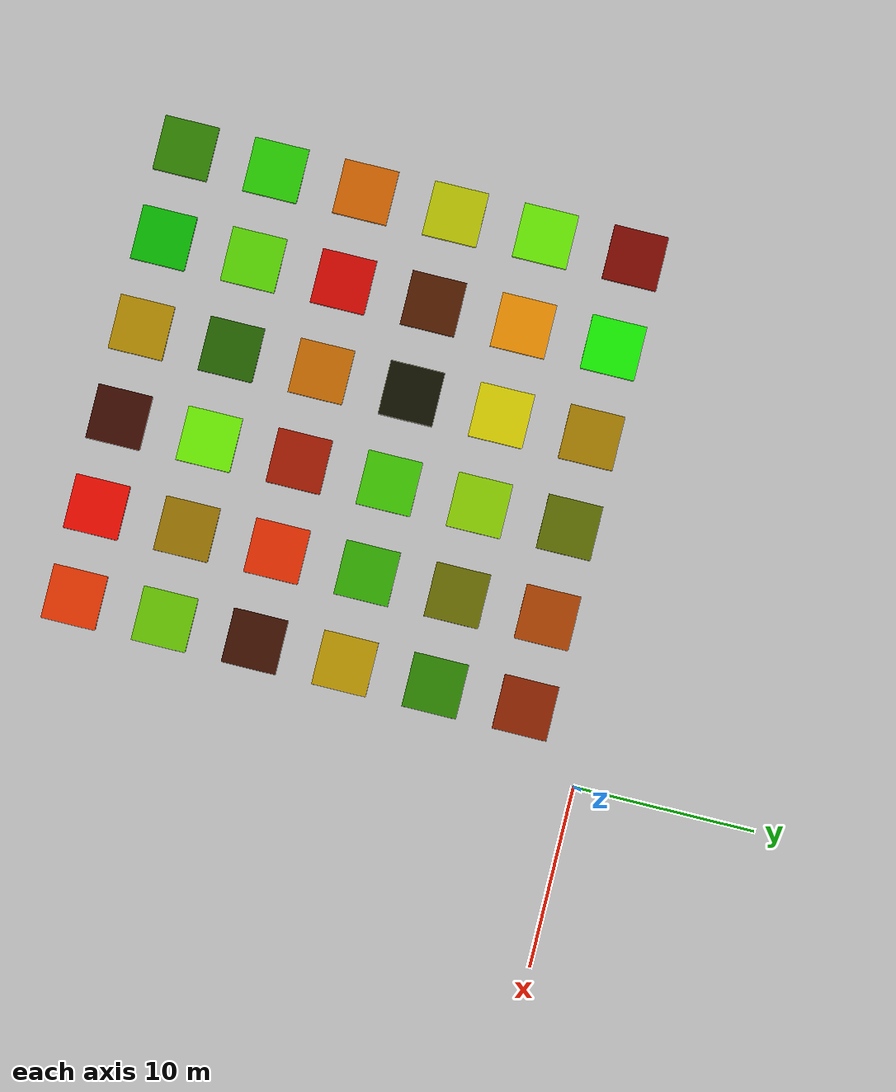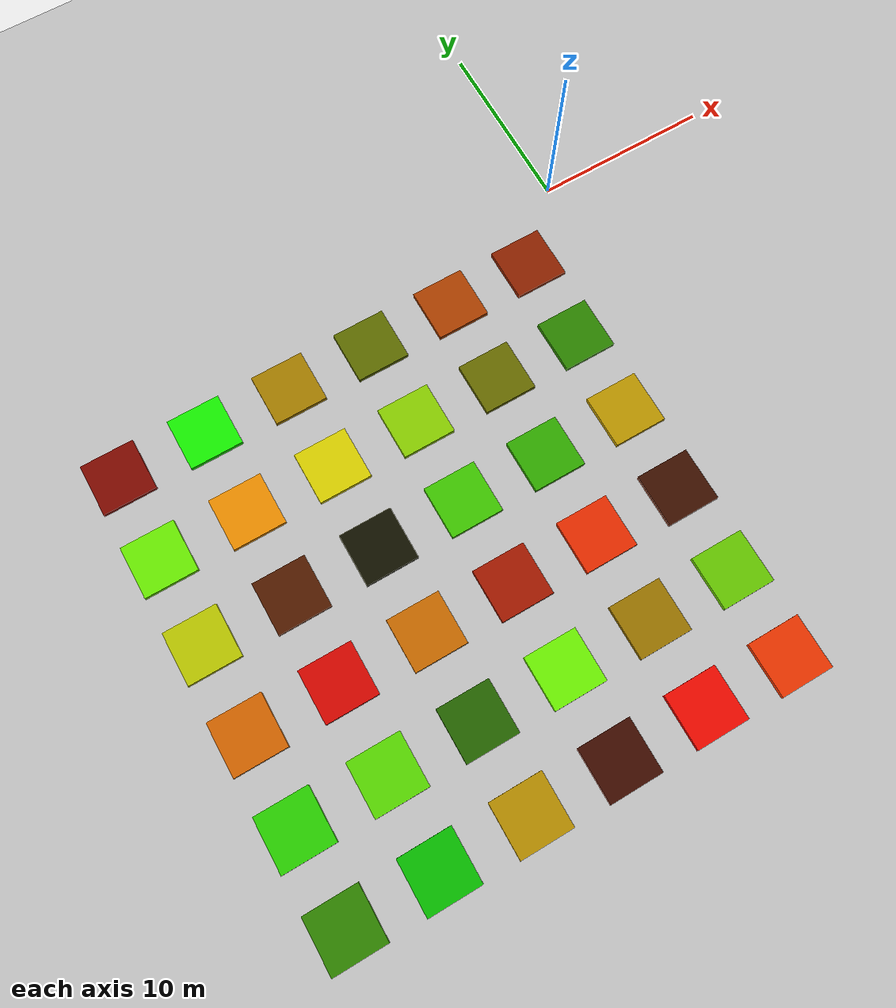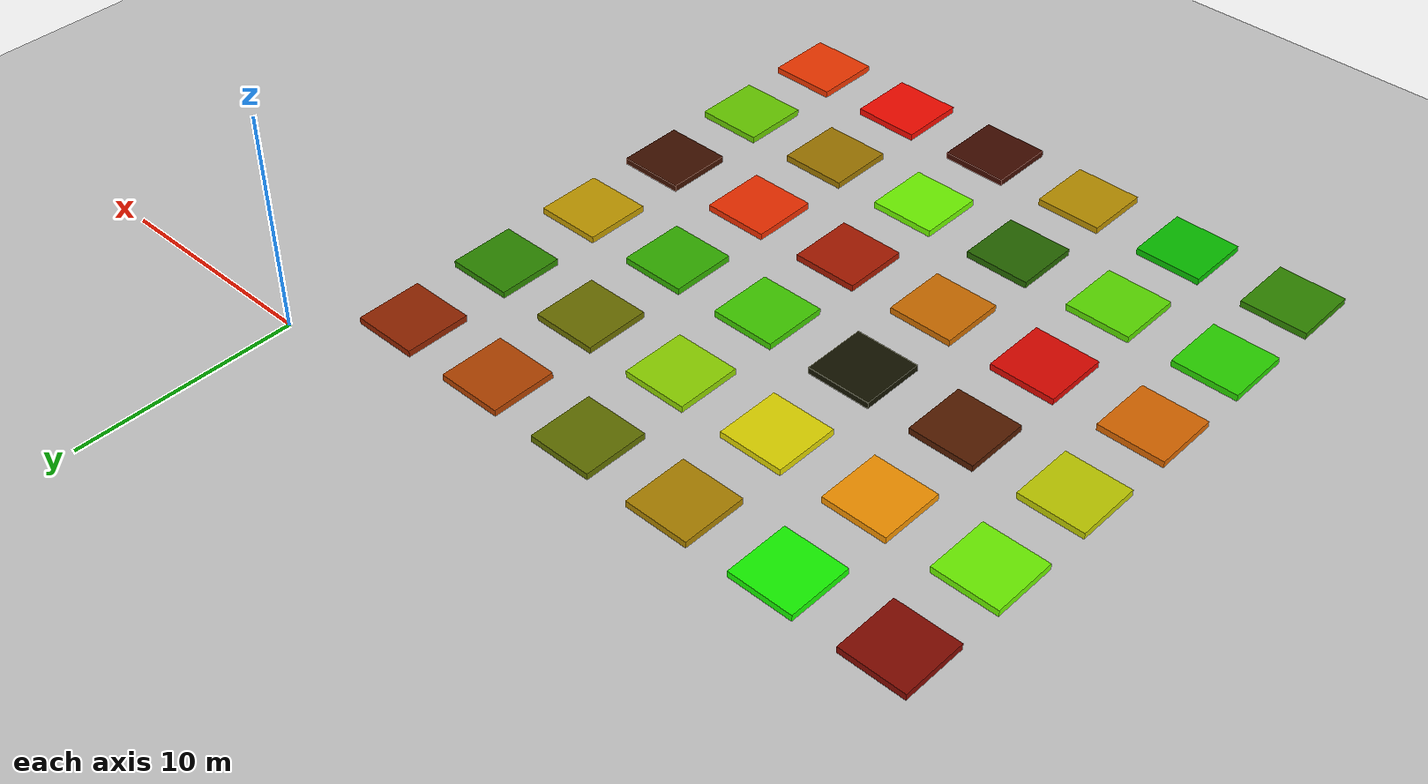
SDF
<sdf version='1.6'>
  <world name='default'>
    <light name='sun' type='directional'>
      <cast_shadows>1</cast_shadows>
      <pose frame=''>0 0 10 0 -0 0</pose>
      <diffuse>0.8 0.8 0.8 1</diffuse>
      <specular>0.2 0.2 0.2 1</specular>
      <attenuation>
        <range>1000</range>
        <constant>0.9</constant>
        <linear>0.01</linear>
        <quadratic>0.001</quadratic>
      </attenuation>
      <direction>-0.5 0.1 -0.9</direction>
    </light>
    <model name='ground_plane'>
      <static>1</static>
      <link name='link'>
        <collision name='collision'>
          <geometry>
            <plane>
              <normal>0 0 1</normal>
              <size>104 104</size>
            </plane>
          </geometry>
          <surface>
            <contact>
              <collide_bitmask>65535</collide_bitmask>
              <ode/>
            </contact>
            <friction>
              <ode>
                <mu>100</mu>
                <mu2>50</mu2>
              </ode>
              <torsional>
                <ode/>
              </torsional>
            </friction>
            <bounce/>
          </surface>
          <max_contacts>100</max_contacts>
        </collision>
        <visual name='visual'>
          <cast_shadows>0</cast_shadows>
          <geometry>
            <plane>
              <normal>0 0 1</normal>
              <size>104 104</size>
            </plane>
          </geometry>
          <material>
            <script>
              <uri>file://media/materials/scripts/gazebo.material</uri>
              <name>Gazebo/Grey</name>
            </script>
          </material>
        </visual>
        <self_collide>0</self_collide>
        <enable_wind>0</enable_wind>
        <kinematic>0</kinematic>
      </link>
    </model>
    <gravity>0 0 -9.8</gravity>
    <magnetic_field>6e-06 2.3e-05 -4.2e-05</magnetic_field>
    <atmosphere type='adiabatic'/>
    <physics name='default_physics' default='0' type='ode'>
      <max_step_size>0.001</max_step_size>
      <real_time_factor>1</real_time_factor>
      <real_time_update_rate>1000</real_time_update_rate>
    </physics>
    <scene>
      <ambient>0.4 0.4 0.4 1</ambient>
      <background>0.7 0.7 0.7 1</background>
      <shadows>1</shadows>
    </scene>
    <audio>
      <device>default</device>
    </audio>
    <wind/>
    <spherical_coordinates>
      <surface_model>EARTH_WGS84</surface_model>
      <latitude_deg>0</latitude_deg>
      <longitude_deg>0</longitude_deg>
      <elevation>0</elevation>
      <heading_deg>0</heading_deg>
    </spherical_coordinates>
    <model name='box_0'>
      <pose>-28.5 -28.5 0.15 0.0 0.0 0</pose>
      <link name='link'>
        <inertial>
          <mass>1</mass>
          <inertia>
            <ixx>1.0</ixx>
            <ixy>0</ixy>
            <ixz>0</ixz>
            <iyy>1.0</iyy>
            <iyz>0</iyz>
            <izz>1.0</izz>
          </inertia>
        </inertial>
        <collision name='collision'>
          <geometry>
            <box>
              <size>3.0 3.0 0.3</size>
            </box>
          </geometry>
          <max_contacts>100</max_contacts>
          <surface>
            <contact>
              <ode/>
            </contact>
            <bounce/>
            <friction>
              <torsional>
                <ode/>
              </torsional>
              <ode/>
            </friction>
          </surface>
        </collision>
        <visual name='visual'>
          <geometry>
            <box>
              <size>3.0 3.0 0.3</size>
            </box>
          </geometry>
          <material>
            <ambient>0.19284537550522762 0.5360151755633817 0.001176470588235294 1</ambient>
            <diffuse>0.19284537550522762 0.5360151755633817 0.001176470588235294 1</diffuse>
          </material>
        </visual>
        <self_collide>0</self_collide>
        <enable_wind>0</enable_wind>
        <kinematic>0</kinematic>
      </link>
    </model>
    <model name='box_1'>
      <pose>-23.5 -28.5 0.15 0.0 0.0 0</pose>
      <link name='link'>
        <inertial>
          <mass>1</mass>
          <inertia>
            <ixx>1.0</ixx>
            <ixy>0</ixy>
            <ixz>0</ixz>
            <iyy>1.0</iyy>
            <iyz>0</iyz>
            <izz>1.0</izz>
          </inertia>
        </inertial>
        <collision name='collision'>
          <geometry>
            <box>
              <size>3.0 3.0 0.3</size>
            </box>
          </geometry>
          <max_contacts>100</max_contacts>
          <surface>
            <contact>
              <ode/>
            </contact>
            <bounce/>
            <friction>
              <torsional>
                <ode/>
              </torsional>
              <ode/>
            </friction>
          </surface>
        </collision>
        <visual name='visual'>
          <geometry>
            <box>
              <size>3.0 3.0 0.3</size>
            </box>
          </geometry>
          <material>
            <ambient>0.03468235810495901 0.7648249638306358 0.001176470588235294 1</ambient>
            <diffuse>0.03468235810495901 0.7648249638306358 0.001176470588235294 1</diffuse>
          </material>
        </visual>
        <self_collide>0</self_collide>
        <enable_wind>0</enable_wind>
        <kinematic>0</kinematic>
      </link>
    </model>
    <model name='box_2'>
      <pose>-18.5 -28.5 0.15 0.0 0.0 0</pose>
      <link name='link'>
        <inertial>
          <mass>1</mass>
          <inertia>
            <ixx>1.0</ixx>
            <ixy>0</ixy>
            <ixz>0</ixz>
            <iyy>1.0</iyy>
            <iyz>0</iyz>
            <izz>1.0</izz>
          </inertia>
        </inertial>
        <collision name='collision'>
          <geometry>
            <box>
              <size>3.0 3.0 0.3</size>
            </box>
          </geometry>
          <max_contacts>100</max_contacts>
          <surface>
            <contact>
              <ode/>
            </contact>
            <bounce/>
            <friction>
              <torsional>
                <ode/>
              </torsional>
              <ode/>
            </friction>
          </surface>
        </collision>
        <visual name='visual'>
          <geometry>
            <box>
              <size>3.0 3.0 0.3</size>
            </box>
          </geometry>
          <material>
            <ambient>0.7398356586045958 0.5716897895981516 0.001176470588235294 1</ambient>
            <diffuse>0.7398356586045958 0.5716897895981516 0.001176470588235294 1</diffuse>
          </material>
        </visual>
        <self_collide>0</self_collide>
        <enable_wind>0</enable_wind>
        <kinematic>0</kinematic>
      </link>
    </model>
    <model name='box_3'>
      <pose>-13.5 -28.5 0.15 0.0 0.0 0</pose>
      <link name='link'>
        <inertial>
          <mass>1</mass>
          <inertia>
            <ixx>1.0</ixx>
            <ixy>0</ixy>
            <ixz>0</ixz>
            <iyy>1.0</iyy>
            <iyz>0</iyz>
            <izz>1.0</izz>
          </inertia>
        </inertial>
        <collision name='collision'>
          <geometry>
            <box>
              <size>3.0 3.0 0.3</size>
            </box>
          </geometry>
          <max_contacts>100</max_contacts>
          <surface>
            <contact>
              <ode/>
            </contact>
            <bounce/>
            <friction>
              <torsional>
                <ode/>
              </torsional>
              <ode/>
            </friction>
          </surface>
        </collision>
        <visual name='visual'>
          <geometry>
            <box>
              <size>3.0 3.0 0.3</size>
            </box>
          </geometry>
          <material>
            <ambient>0.25555095188171806 0.04674944490097199 0.001176470588235294 1</ambient>
            <diffuse>0.25555095188171806 0.04674944490097199 0.001176470588235294 1</diffuse>
          </material>
        </visual>
        <self_collide>0</self_collide>
        <enable_wind>0</enable_wind>
        <kinematic>0</kinematic>
      </link>
    </model>
    <model name='box_4'>
      <pose>-8.5 -28.5 0.15 0.0 0.0 0</pose>
      <link name='link'>
        <inertial>
          <mass>1</mass>
          <inertia>
            <ixx>1.0</ixx>
            <ixy>0</ixy>
            <ixz>0</ixz>
            <iyy>1.0</iyy>
            <iyz>0</iyz>
            <izz>1.0</izz>
          </inertia>
        </inertial>
        <collision name='collision'>
          <geometry>
            <box>
              <size>3.0 3.0 0.3</size>
            </box>
          </geometry>
          <max_contacts>100</max_contacts>
          <surface>
            <contact>
              <ode/>
            </contact>
            <bounce/>
            <friction>
              <torsional>
                <ode/>
              </torsional>
              <ode/>
            </friction>
          </surface>
        </collision>
        <visual name='visual'>
          <geometry>
            <box>
              <size>3.0 3.0 0.3</size>
            </box>
          </geometry>
          <material>
            <ambient>0.977404195039598 0.04466612589612129 0.001176470588235294 1</ambient>
            <diffuse>0.977404195039598 0.04466612589612129 0.001176470588235294 1</diffuse>
          </material>
        </visual>
        <self_collide>0</self_collide>
        <enable_wind>0</enable_wind>
        <kinematic>0</kinematic>
      </link>
    </model>
    <model name='box_5'>
      <pose>-3.5 -28.5 0.15 0.0 0.0 0</pose>
      <link name='link'>
        <inertial>
          <mass>1</mass>
          <inertia>
            <ixx>1.0</ixx>
            <ixy>0</ixy>
            <ixz>0</ixz>
            <iyy>1.0</iyy>
            <iyz>0</iyz>
            <izz>1.0</izz>
          </inertia>
        </inertial>
        <collision name='collision'>
          <geometry>
            <box>
              <size>3.0 3.0 0.3</size>
            </box>
          </geometry>
          <max_contacts>100</max_contacts>
          <surface>
            <contact>
              <ode/>
            </contact>
            <bounce/>
            <friction>
              <torsional>
                <ode/>
              </torsional>
              <ode/>
            </friction>
          </surface>
        </collision>
        <visual name='visual'>
          <geometry>
            <box>
              <size>3.0 3.0 0.3</size>
            </box>
          </geometry>
          <material>
            <ambient>0.9562380457251982 0.21892911063746778 0.001176470588235294 1</ambient>
            <diffuse>0.9562380457251982 0.21892911063746778 0.001176470588235294 1</diffuse>
          </material>
        </visual>
        <self_collide>0</self_collide>
        <enable_wind>0</enable_wind>
        <kinematic>0</kinematic>
      </link>
    </model>
    <model name='box_6'>
      <pose>-28.5 -23.5 0.15 0.0 0.0 0</pose>
      <link name='link'>
        <inertial>
          <mass>1</mass>
          <inertia>
            <ixx>1.0</ixx>
            <ixy>0</ixy>
            <ixz>0</ixz>
            <iyy>1.0</iyy>
            <iyz>0</iyz>
            <izz>1.0</izz>
          </inertia>
        </inertial>
        <collision name='collision'>
          <geometry>
            <box>
              <size>3.0 3.0 0.3</size>
            </box>
          </geometry>
          <max_contacts>100</max_contacts>
          <surface>
            <contact>
              <ode/>
            </contact>
            <bounce/>
            <friction>
              <torsional>
                <ode/>
              </torsional>
              <ode/>
            </friction>
          </surface>
        </collision>
        <visual name='visual'>
          <geometry>
            <box>
              <size>3.0 3.0 0.3</size>
            </box>
          </geometry>
          <material>
            <ambient>0.168440000636489 0.8479632521848465 0.001176470588235294 1</ambient>
            <diffuse>0.168440000636489 0.8479632521848465 0.001176470588235294 1</diffuse>
          </material>
        </visual>
        <self_collide>0</self_collide>
        <enable_wind>0</enable_wind>
        <kinematic>0</kinematic>
      </link>
    </model>
    <model name='box_7'>
      <pose>-23.5 -23.5 0.15 0.0 0.0 0</pose>
      <link name='link'>
        <inertial>
          <mass>1</mass>
          <inertia>
            <ixx>1.0</ixx>
            <ixy>0</ixy>
            <ixz>0</ixz>
            <iyy>1.0</iyy>
            <iyz>0</iyz>
            <izz>1.0</izz>
          </inertia>
        </inertial>
        <collision name='collision'>
          <geometry>
            <box>
              <size>3.0 3.0 0.3</size>
            </box>
          </geometry>
          <max_contacts>100</max_contacts>
          <surface>
            <contact>
              <ode/>
            </contact>
            <bounce/>
            <friction>
              <torsional>
                <ode/>
              </torsional>
              <ode/>
            </friction>
          </surface>
        </collision>
        <visual name='visual'>
          <geometry>
            <box>
              <size>3.0 3.0 0.3</size>
            </box>
          </geometry>
          <material>
            <ambient>0.36258992459582984 0.8812785554447411 0.001176470588235294 1</ambient>
            <diffuse>0.36258992459582984 0.8812785554447411 0.001176470588235294 1</diffuse>
          </material>
        </visual>
        <self_collide>0</self_collide>
        <enable_wind>0</enable_wind>
        <kinematic>0</kinematic>
      </link>
    </model>
    <model name='box_8'>
      <pose>-18.5 -23.5 0.15 0.0 0.0 0</pose>
      <link name='link'>
        <inertial>
          <mass>1</mass>
          <inertia>
            <ixx>1.0</ixx>
            <ixy>0</ixy>
            <ixz>0</ixz>
            <iyy>1.0</iyy>
            <iyz>0</iyz>
            <izz>1.0</izz>
          </inertia>
        </inertial>
        <collision name='collision'>
          <geometry>
            <box>
              <size>3.0 3.0 0.3</size>
            </box>
          </geometry>
          <max_contacts>100</max_contacts>
          <surface>
            <contact>
              <ode/>
            </contact>
            <bounce/>
            <friction>
              <torsional>
                <ode/>
              </torsional>
              <ode/>
            </friction>
          </surface>
        </collision>
        <visual name='visual'>
          <geometry>
            <box>
              <size>3.0 3.0 0.3</size>
            </box>
          </geometry>
          <material>
            <ambient>0.1484734604158614 0.4080359303819612 0.001176470588235294 1</ambient>
            <diffuse>0.1484734604158614 0.4080359303819612 0.001176470588235294 1</diffuse>
          </material>
        </visual>
        <self_collide>0</self_collide>
        <enable_wind>0</enable_wind>
        <kinematic>0</kinematic>
      </link>
    </model>
    <model name='box_9'>
      <pose>-13.5 -23.5 0.15 0.0 0.0 0</pose>
      <link name='link'>
        <inertial>
          <mass>1</mass>
          <inertia>
            <ixx>1.0</ixx>
            <ixy>0</ixy>
            <ixz>0</ixz>
            <iyy>1.0</iyy>
            <iyz>0</iyz>
            <izz>1.0</izz>
          </inertia>
        </inertial>
        <collision name='collision'>
          <geometry>
            <box>
              <size>3.0 3.0 0.3</size>
            </box>
          </geometry>
          <max_contacts>100</max_contacts>
          <surface>
            <contact>
              <ode/>
            </contact>
            <bounce/>
            <friction>
              <torsional>
                <ode/>
              </torsional>
              <ode/>
            </friction>
          </surface>
        </collision>
        <visual name='visual'>
          <geometry>
            <box>
              <size>3.0 3.0 0.3</size>
            </box>
          </geometry>
          <material>
            <ambient>0.4479194108990542 0.989515480770466 0.001176470588235294 1</ambient>
            <diffuse>0.4479194108990542 0.989515480770466 0.001176470588235294 1</diffuse>
          </material>
        </visual>
        <self_collide>0</self_collide>
        <enable_wind>0</enable_wind>
        <kinematic>0</kinematic>
      </link>
    </model>
    <model name='box_10'>
      <pose>-8.5 -23.5 0.15 0.0 0.0 0</pose>
      <link name='link'>
        <inertial>
          <mass>1</mass>
          <inertia>
            <ixx>1.0</ixx>
            <ixy>0</ixy>
            <ixz>0</ixz>
            <iyy>1.0</iyy>
            <iyz>0</iyz>
            <izz>1.0</izz>
          </inertia>
        </inertial>
        <collision name='collision'>
          <geometry>
            <box>
              <size>3.0 3.0 0.3</size>
            </box>
          </geometry>
          <max_contacts>100</max_contacts>
          <surface>
            <contact>
              <ode/>
            </contact>
            <bounce/>
            <friction>
              <torsional>
                <ode/>
              </torsional>
              <ode/>
            </friction>
          </surface>
        </collision>
        <visual name='visual'>
          <geometry>
            <box>
              <size>3.0 3.0 0.3</size>
            </box>
          </geometry>
          <material>
            <ambient>0.631118552382765 0.4752635578777378 0.001176470588235294 1</ambient>
            <diffuse>0.631118552382765 0.4752635578777378 0.001176470588235294 1</diffuse>
          </material>
        </visual>
        <self_collide>0</self_collide>
        <enable_wind>0</enable_wind>
        <kinematic>0</kinematic>
      </link>
    </model>
    <model name='box_11'>
      <pose>-3.5 -23.5 0.15 0.0 0.0 0</pose>
      <link name='link'>
        <inertial>
          <mass>1</mass>
          <inertia>
            <ixx>1.0</ixx>
            <ixy>0</ixy>
            <ixz>0</ixz>
            <iyy>1.0</iyy>
            <iyz>0</iyz>
            <izz>1.0</izz>
          </inertia>
        </inertial>
        <collision name='collision'>
          <geometry>
            <box>
              <size>3.0 3.0 0.3</size>
            </box>
          </geometry>
          <max_contacts>100</max_contacts>
          <surface>
            <contact>
              <ode/>
            </contact>
            <bounce/>
            <friction>
              <torsional>
                <ode/>
              </torsional>
              <ode/>
            </friction>
          </surface>
        </collision>
        <visual name='visual'>
          <geometry>
            <box>
              <size>3.0 3.0 0.3</size>
            </box>
          </geometry>
          <material>
            <ambient>0.41865843611433307 0.8104047097268194 0.001176470588235294 1</ambient>
            <diffuse>0.41865843611433307 0.8104047097268194 0.001176470588235294 1</diffuse>
          </material>
        </visual>
        <self_collide>0</self_collide>
        <enable_wind>0</enable_wind>
        <kinematic>0</kinematic>
      </link>
    </model>
    <model name='box_12'>
      <pose>-28.5 -18.5 0.15 0.0 0.0 0</pose>
      <link name='link'>
        <inertial>
          <mass>1</mass>
          <inertia>
            <ixx>1.0</ixx>
            <ixy>0</ixy>
            <ixz>0</ixz>
            <iyy>1.0</iyy>
            <iyz>0</iyz>
            <izz>1.0</izz>
          </inertia>
        </inertial>
        <collision name='collision'>
          <geometry>
            <box>
              <size>3.0 3.0 0.3</size>
            </box>
          </geometry>
          <max_contacts>100</max_contacts>
          <surface>
            <contact>
              <ode/>
            </contact>
            <bounce/>
            <friction>
              <torsional>
                <ode/>
              </torsional>
              <ode/>
            </friction>
          </surface>
        </collision>
        <visual name='visual'>
          <geometry>
            <box>
              <size>3.0 3.0 0.3</size>
            </box>
          </geometry>
          <material>
            <ambient>0.8625473420796321 0.40751574641547994 0.001176470588235294 1</ambient>
            <diffuse>0.8625473420796321 0.40751574641547994 0.001176470588235294 1</diffuse>
          </material>
        </visual>
        <self_collide>0</self_collide>
        <enable_wind>0</enable_wind>
        <kinematic>0</kinematic>
      </link>
    </model>
    <model name='box_13'>
      <pose>-23.5 -18.5 0.15 0.0 0.0 0</pose>
      <link name='link'>
        <inertial>
          <mass>1</mass>
          <inertia>
            <ixx>1.0</ixx>
            <ixy>0</ixy>
            <ixz>0</ixz>
            <iyy>1.0</iyy>
            <iyz>0</iyz>
            <izz>1.0</izz>
          </inertia>
        </inertial>
        <collision name='collision'>
          <geometry>
            <box>
              <size>3.0 3.0 0.3</size>
            </box>
          </geometry>
          <max_contacts>100</max_contacts>
          <surface>
            <contact>
              <ode/>
            </contact>
            <bounce/>
            <friction>
              <torsional>
                <ode/>
              </torsional>
              <ode/>
            </friction>
          </surface>
        </collision>
        <visual name='visual'>
          <geometry>
            <box>
              <size>3.0 3.0 0.3</size>
            </box>
          </geometry>
          <material>
            <ambient>0.8759026334120875 0.03192021458254224 0.001176470588235294 1</ambient>
            <diffuse>0.8759026334120875 0.03192021458254224 0.001176470588235294 1</diffuse>
          </material>
        </visual>
        <self_collide>0</self_collide>
        <enable_wind>0</enable_wind>
        <kinematic>0</kinematic>
      </link>
    </model>
    <model name='box_14'>
      <pose>-18.5 -18.5 0.15 0.0 0.0 0</pose>
      <link name='link'>
        <inertial>
          <mass>1</mass>
          <inertia>
            <ixx>1.0</ixx>
            <ixy>0</ixy>
            <ixz>0</ixz>
            <iyy>1.0</iyy>
            <iyz>0</iyz>
            <izz>1.0</izz>
          </inertia>
        </inertial>
        <collision name='collision'>
          <geometry>
            <box>
              <size>3.0 3.0 0.3</size>
            </box>
          </geometry>
          <max_contacts>100</max_contacts>
          <surface>
            <contact>
              <ode/>
            </contact>
            <bounce/>
            <friction>
              <torsional>
                <ode/>
              </torsional>
              <ode/>
            </friction>
          </surface>
        </collision>
        <visual name='visual'>
          <geometry>
            <box>
              <size>3.0 3.0 0.3</size>
            </box>
          </geometry>
          <material>
            <ambient>0.8176163308676254 0.4326411529965598 0.001176470588235294 1</ambient>
            <diffuse>0.8176163308676254 0.4326411529965598 0.001176470588235294 1</diffuse>
          </material>
        </visual>
        <self_collide>0</self_collide>
        <enable_wind>0</enable_wind>
        <kinematic>0</kinematic>
      </link>
    </model>
    <model name='box_15'>
      <pose>-13.5 -18.5 0.15 0.0 0.0 0</pose>
      <link name='link'>
        <inertial>
          <mass>1</mass>
          <inertia>
            <ixx>1.0</ixx>
            <ixy>0</ixy>
            <ixz>0</ixz>
            <iyy>1.0</iyy>
            <iyz>0</iyz>
            <izz>1.0</izz>
          </inertia>
        </inertial>
        <collision name='collision'>
          <geometry>
            <box>
              <size>3.0 3.0 0.3</size>
            </box>
          </geometry>
          <max_contacts>100</max_contacts>
          <surface>
            <contact>
              <ode/>
            </contact>
            <bounce/>
            <friction>
              <torsional>
                <ode/>
              </torsional>
              <ode/>
            </friction>
          </surface>
        </collision>
        <visual name='visual'>
          <geometry>
            <box>
              <size>3.0 3.0 0.3</size>
            </box>
          </geometry>
          <material>
            <ambient>0.6698073194195052 0.10158775922925001 0.001176470588235294 1</ambient>
            <diffuse>0.6698073194195052 0.10158775922925001 0.001176470588235294 1</diffuse>
          </material>
        </visual>
        <self_collide>0</self_collide>
        <enable_wind>0</enable_wind>
        <kinematic>0</kinematic>
      </link>
    </model>
    <model name='box_16'>
      <pose>-8.5 -18.5 0.15 0.0 0.0 0</pose>
      <link name='link'>
        <inertial>
          <mass>1</mass>
          <inertia>
            <ixx>1.0</ixx>
            <ixy>0</ixy>
            <ixz>0</ixz>
            <iyy>1.0</iyy>
            <iyz>0</iyz>
            <izz>1.0</izz>
          </inertia>
        </inertial>
        <collision name='collision'>
          <geometry>
            <box>
              <size>3.0 3.0 0.3</size>
            </box>
          </geometry>
          <max_contacts>100</max_contacts>
          <surface>
            <contact>
              <ode/>
            </contact>
            <bounce/>
            <friction>
              <torsional>
                <ode/>
              </torsional>
              <ode/>
            </friction>
          </surface>
        </collision>
        <visual name='visual'>
          <geometry>
            <box>
              <size>3.0 3.0 0.3</size>
            </box>
          </geometry>
          <material>
            <ambient>0.9457442383953404 0.18578904961112375 0.001176470588235294 1</ambient>
            <diffuse>0.9457442383953404 0.18578904961112375 0.001176470588235294 1</diffuse>
          </material>
        </visual>
        <self_collide>0</self_collide>
        <enable_wind>0</enable_wind>
        <kinematic>0</kinematic>
      </link>
    </model>
    <model name='box_17'>
      <pose>-3.5 -18.5 0.15 0.0 0.0 0</pose>
      <link name='link'>
        <inertial>
          <mass>1</mass>
          <inertia>
            <ixx>1.0</ixx>
            <ixy>0</ixy>
            <ixz>0</ixz>
            <iyy>1.0</iyy>
            <iyz>0</iyz>
            <izz>1.0</izz>
          </inertia>
        </inertial>
        <collision name='collision'>
          <geometry>
            <box>
              <size>3.0 3.0 0.3</size>
            </box>
          </geometry>
          <max_contacts>100</max_contacts>
          <surface>
            <contact>
              <ode/>
            </contact>
            <bounce/>
            <friction>
              <torsional>
                <ode/>
              </torsional>
              <ode/>
            </friction>
          </surface>
        </collision>
        <visual name='visual'>
          <geometry>
            <box>
              <size>3.0 3.0 0.3</size>
            </box>
          </geometry>
          <material>
            <ambient>0.2509835666781688 0.06723584484594691 0.001176470588235294 1</ambient>
            <diffuse>0.2509835666781688 0.06723584484594691 0.001176470588235294 1</diffuse>
          </material>
        </visual>
        <self_collide>0</self_collide>
        <enable_wind>0</enable_wind>
        <kinematic>0</kinematic>
      </link>
    </model>
    <model name='box_18'>
      <pose>-28.5 -13.5 0.15 0.0 0.0 0</pose>
      <link name='link'>
        <inertial>
          <mass>1</mass>
          <inertia>
            <ixx>1.0</ixx>
            <ixy>0</ixy>
            <ixz>0</ixz>
            <iyy>1.0</iyy>
            <iyz>0</iyz>
            <izz>1.0</izz>
          </inertia>
        </inertial>
        <collision name='collision'>
          <geometry>
            <box>
              <size>3.0 3.0 0.3</size>
            </box>
          </geometry>
          <max_contacts>100</max_contacts>
          <surface>
            <contact>
              <ode/>
            </contact>
            <bounce/>
            <friction>
              <torsional>
                <ode/>
              </torsional>
              <ode/>
            </friction>
          </surface>
        </collision>
        <visual name='visual'>
          <geometry>
            <box>
              <size>3.0 3.0 0.3</size>
            </box>
          </geometry>
          <material>
            <ambient>0.7621911456290629 0.8064295730880174 0.001176470588235294 1</ambient>
            <diffuse>0.7621911456290629 0.8064295730880174 0.001176470588235294 1</diffuse>
          </material>
        </visual>
        <self_collide>0</self_collide>
        <enable_wind>0</enable_wind>
        <kinematic>0</kinematic>
      </link>
    </model>
    <model name='box_19'>
      <pose>-23.5 -13.5 0.15 0.0 0.0 0</pose>
      <link name='link'>
        <inertial>
          <mass>1</mass>
          <inertia>
            <ixx>1.0</ixx>
            <ixy>0</ixy>
            <ixz>0</ixz>
            <iyy>1.0</iyy>
            <iyz>0</iyz>
            <izz>1.0</izz>
          </inertia>
        </inertial>
        <collision name='collision'>
          <geometry>
            <box>
              <size>3.0 3.0 0.3</size>
            </box>
          </geometry>
          <max_contacts>100</max_contacts>
          <surface>
            <contact>
              <ode/>
            </contact>
            <bounce/>
            <friction>
              <torsional>
                <ode/>
              </torsional>
              <ode/>
            </friction>
          </surface>
        </collision>
        <visual name='visual'>
          <geometry>
            <box>
              <size>3.0 3.0 0.3</size>
            </box>
          </geometry>
          <material>
            <ambient>0.3367961122517914 0.11101093571480014 0.001176470588235294 1</ambient>
            <diffuse>0.3367961122517914 0.11101093571480014 0.001176470588235294 1</diffuse>
          </material>
        </visual>
        <self_collide>0</self_collide>
        <enable_wind>0</enable_wind>
        <kinematic>0</kinematic>
      </link>
    </model>
    <model name='box_20'>
      <pose>-18.5 -13.5 0.15 0.0 0.0 0</pose>
      <link name='link'>
        <inertial>
          <mass>1</mass>
          <inertia>
            <ixx>1.0</ixx>
            <ixy>0</ixy>
            <ixz>0</ixz>
            <iyy>1.0</iyy>
            <iyz>0</iyz>
            <izz>1.0</izz>
          </inertia>
        </inertial>
        <collision name='collision'>
          <geometry>
            <box>
              <size>3.0 3.0 0.3</size>
            </box>
          </geometry>
          <max_contacts>100</max_contacts>
          <surface>
            <contact>
              <ode/>
            </contact>
            <bounce/>
            <friction>
              <torsional>
                <ode/>
              </torsional>
              <ode/>
            </friction>
          </surface>
        </collision>
        <visual name='visual'>
          <geometry>
            <box>
              <size>3.0 3.0 0.3</size>
            </box>
          </geometry>
          <material>
            <ambient>0.07231918934996695 0.07264533482947944 0.001176470588235294 1</ambient>
            <diffuse>0.07231918934996695 0.07264533482947944 0.001176470588235294 1</diffuse>
          </material>
        </visual>
        <self_collide>0</self_collide>
        <enable_wind>0</enable_wind>
        <kinematic>0</kinematic>
      </link>
    </model>
    <model name='box_21'>
      <pose>-13.5 -13.5 0.15 0.0 0.0 0</pose>
      <link name='link'>
        <inertial>
          <mass>1</mass>
          <inertia>
            <ixx>1.0</ixx>
            <ixy>0</ixy>
            <ixz>0</ixz>
            <iyy>1.0</iyy>
            <iyz>0</iyz>
            <izz>1.0</izz>
          </inertia>
        </inertial>
        <collision name='collision'>
          <geometry>
            <box>
              <size>3.0 3.0 0.3</size>
            </box>
          </geometry>
          <max_contacts>100</max_contacts>
          <surface>
            <contact>
              <ode/>
            </contact>
            <bounce/>
            <friction>
              <torsional>
                <ode/>
              </torsional>
              <ode/>
            </friction>
          </surface>
        </collision>
        <visual name='visual'>
          <geometry>
            <box>
              <size>3.0 3.0 0.3</size>
            </box>
          </geometry>
          <material>
            <ambient>0.25840479984974674 0.8143487377086255 0.001176470588235294 1</ambient>
            <diffuse>0.25840479984974674 0.8143487377086255 0.001176470588235294 1</diffuse>
          </material>
        </visual>
        <self_collide>0</self_collide>
        <enable_wind>0</enable_wind>
        <kinematic>0</kinematic>
      </link>
    </model>
    <model name='box_22'>
      <pose>-8.5 -13.5 0.15 0.0 0.0 0</pose>
      <link name='link'>
        <inertial>
          <mass>1</mass>
          <inertia>
            <ixx>1.0</ixx>
            <ixy>0</ixy>
            <ixz>0</ixz>
            <iyy>1.0</iyy>
            <iyz>0</iyz>
            <izz>1.0</izz>
          </inertia>
        </inertial>
        <collision name='collision'>
          <geometry>
            <box>
              <size>3.0 3.0 0.3</size>
            </box>
          </geometry>
          <max_contacts>100</max_contacts>
          <surface>
            <contact>
              <ode/>
            </contact>
            <bounce/>
            <friction>
              <torsional>
                <ode/>
              </torsional>
              <ode/>
            </friction>
          </surface>
        </collision>
        <visual name='visual'>
          <geometry>
            <box>
              <size>3.0 3.0 0.3</size>
            </box>
          </geometry>
          <material>
            <ambient>0.20476172821907368 0.7001262064690996 0.001176470588235294 1</ambient>
            <diffuse>0.20476172821907368 0.7001262064690996 0.001176470588235294 1</diffuse>
          </material>
        </visual>
        <self_collide>0</self_collide>
        <enable_wind>0</enable_wind>
        <kinematic>0</kinematic>
      </link>
    </model>
    <model name='box_23'>
      <pose>-3.5 -13.5 0.15 0.0 0.0 0</pose>
      <link name='link'>
        <inertial>
          <mass>1</mass>
          <inertia>
            <ixx>1.0</ixx>
            <ixy>0</ixy>
            <ixz>0</ixz>
            <iyy>1.0</iyy>
            <iyz>0</iyz>
            <izz>1.0</izz>
          </inertia>
        </inertial>
        <collision name='collision'>
          <geometry>
            <box>
              <size>3.0 3.0 0.3</size>
            </box>
          </geometry>
          <max_contacts>100</max_contacts>
          <surface>
            <contact>
              <ode/>
            </contact>
            <bounce/>
            <friction>
              <torsional>
                <ode/>
              </torsional>
              <ode/>
            </friction>
          </surface>
        </collision>
        <visual name='visual'>
          <geometry>
            <box>
              <size>3.0 3.0 0.3</size>
            </box>
          </geometry>
          <material>
            <ambient>0.7720307601235886 0.6152296898515588 0.001176470588235294 1</ambient>
            <diffuse>0.7720307601235886 0.6152296898515588 0.001176470588235294 1</diffuse>
          </material>
        </visual>
        <self_collide>0</self_collide>
        <enable_wind>0</enable_wind>
        <kinematic>0</kinematic>
      </link>
    </model>
    <model name='box_24'>
      <pose>-28.5 -8.5 0.15 0.0 0.0 0</pose>
      <link name='link'>
        <inertial>
          <mass>1</mass>
          <inertia>
            <ixx>1.0</ixx>
            <ixy>0</ixy>
            <ixz>0</ixz>
            <iyy>1.0</iyy>
            <iyz>0</iyz>
            <izz>1.0</izz>
          </inertia>
        </inertial>
        <collision name='collision'>
          <geometry>
            <box>
              <size>3.0 3.0 0.3</size>
            </box>
          </geometry>
          <max_contacts>100</max_contacts>
          <surface>
            <contact>
              <ode/>
            </contact>
            <bounce/>
            <friction>
              <torsional>
                <ode/>
              </torsional>
              <ode/>
            </friction>
          </surface>
        </collision>
        <visual name='visual'>
          <geometry>
            <box>
              <size>3.0 3.0 0.3</size>
            </box>
          </geometry>
          <material>
            <ambient>0.43680543760550594 0.973895407141158 0.001176470588235294 1</ambient>
            <diffuse>0.43680543760550594 0.973895407141158 0.001176470588235294 1</diffuse>
          </material>
        </visual>
        <self_collide>0</self_collide>
        <enable_wind>0</enable_wind>
        <kinematic>0</kinematic>
      </link>
    </model>
    <model name='box_25'>
      <pose>-23.5 -8.5 0.15 0.0 0.0 0</pose>
      <link name='link'>
        <inertial>
          <mass>1</mass>
          <inertia>
            <ixx>1.0</ixx>
            <ixy>0</ixy>
            <ixz>0</ixz>
            <iyy>1.0</iyy>
            <iyz>0</iyz>
            <izz>1.0</izz>
          </inertia>
        </inertial>
        <collision name='collision'>
          <geometry>
            <box>
              <size>3.0 3.0 0.3</size>
            </box>
          </geometry>
          <max_contacts>100</max_contacts>
          <surface>
            <contact>
              <ode/>
            </contact>
            <bounce/>
            <friction>
              <torsional>
                <ode/>
              </torsional>
              <ode/>
            </friction>
          </surface>
        </collision>
        <visual name='visual'>
          <geometry>
            <box>
              <size>3.0 3.0 0.3</size>
            </box>
          </geometry>
          <material>
            <ambient>0.974414718365152 0.5849956472287576 0.001176470588235294 1</ambient>
            <diffuse>0.974414718365152 0.5849956472287576 0.001176470588235294 1</diffuse>
          </material>
        </visual>
        <self_collide>0</self_collide>
        <enable_wind>0</enable_wind>
        <kinematic>0</kinematic>
      </link>
    </model>
    <model name='box_26'>
      <pose>-18.5 -8.5 0.15 0.0 0.0 0</pose>
      <link name='link'>
        <inertial>
          <mass>1</mass>
          <inertia>
            <ixx>1.0</ixx>
            <ixy>0</ixy>
            <ixz>0</ixz>
            <iyy>1.0</iyy>
            <iyz>0</iyz>
            <izz>1.0</izz>
          </inertia>
        </inertial>
        <collision name='collision'>
          <geometry>
            <box>
              <size>3.0 3.0 0.3</size>
            </box>
          </geometry>
          <max_contacts>100</max_contacts>
          <surface>
            <contact>
              <ode/>
            </contact>
            <bounce/>
            <friction>
              <torsional>
                <ode/>
              </torsional>
              <ode/>
            </friction>
          </surface>
        </collision>
        <visual name='visual'>
          <geometry>
            <box>
              <size>3.0 3.0 0.3</size>
            </box>
          </geometry>
          <material>
            <ambient>0.8934268185183161 0.8515864301610488 0.001176470588235294 1</ambient>
            <diffuse>0.8934268185183161 0.8515864301610488 0.001176470588235294 1</diffuse>
          </material>
        </visual>
        <self_collide>0</self_collide>
        <enable_wind>0</enable_wind>
        <kinematic>0</kinematic>
      </link>
    </model>
    <model name='box_27'>
      <pose>-13.5 -8.5 0.15 0.0 0.0 0</pose>
      <link name='link'>
        <inertial>
          <mass>1</mass>
          <inertia>
            <ixx>1.0</ixx>
            <ixy>0</ixy>
            <ixz>0</ixz>
            <iyy>1.0</iyy>
            <iyz>0</iyz>
            <izz>1.0</izz>
          </inertia>
        </inertial>
        <collision name='collision'>
          <geometry>
            <box>
              <size>3.0 3.0 0.3</size>
            </box>
          </geometry>
          <max_contacts>100</max_contacts>
          <surface>
            <contact>
              <ode/>
            </contact>
            <bounce/>
            <friction>
              <torsional>
                <ode/>
              </torsional>
              <ode/>
            </friction>
          </surface>
        </collision>
        <visual name='visual'>
          <geometry>
            <box>
              <size>3.0 3.0 0.3</size>
            </box>
          </geometry>
          <material>
            <ambient>0.5690308441010277 0.8462443493503349 0.001176470588235294 1</ambient>
            <diffuse>0.5690308441010277 0.8462443493503349 0.001176470588235294 1</diffuse>
          </material>
        </visual>
        <self_collide>0</self_collide>
        <enable_wind>0</enable_wind>
        <kinematic>0</kinematic>
      </link>
    </model>
    <model name='box_28'>
      <pose>-8.5 -8.5 0.15 0.0 0.0 0</pose>
      <link name='link'>
        <inertial>
          <mass>1</mass>
          <inertia>
            <ixx>1.0</ixx>
            <ixy>0</ixy>
            <ixz>0</ixz>
            <iyy>1.0</iyy>
            <iyz>0</iyz>
            <izz>1.0</izz>
          </inertia>
        </inertial>
        <collision name='collision'>
          <geometry>
            <box>
              <size>3.0 3.0 0.3</size>
            </box>
          </geometry>
          <max_contacts>100</max_contacts>
          <surface>
            <contact>
              <ode/>
            </contact>
            <bounce/>
            <friction>
              <torsional>
                <ode/>
              </torsional>
              <ode/>
            </friction>
          </surface>
        </collision>
        <visual name='visual'>
          <geometry>
            <box>
              <size>3.0 3.0 0.3</size>
            </box>
          </geometry>
          <material>
            <ambient>0.42936825167685144 0.44481271037520353 0.001176470588235294 1</ambient>
            <diffuse>0.42936825167685144 0.44481271037520353 0.001176470588235294 1</diffuse>
          </material>
        </visual>
        <self_collide>0</self_collide>
        <enable_wind>0</enable_wind>
        <kinematic>0</kinematic>
      </link>
    </model>
    <model name='box_29'>
      <pose>-3.5 -8.5 0.15 0.0 0.0 0</pose>
      <link name='link'>
        <inertial>
          <mass>1</mass>
          <inertia>
            <ixx>1.0</ixx>
            <ixy>0</ixy>
            <ixz>0</ixz>
            <iyy>1.0</iyy>
            <iyz>0</iyz>
            <izz>1.0</izz>
          </inertia>
        </inertial>
        <collision name='collision'>
          <geometry>
            <box>
              <size>3.0 3.0 0.3</size>
            </box>
          </geometry>
          <max_contacts>100</max_contacts>
          <surface>
            <contact>
              <ode/>
            </contact>
            <bounce/>
            <friction>
              <torsional>
                <ode/>
              </torsional>
              <ode/>
            </friction>
          </surface>
        </collision>
        <visual name='visual'>
          <geometry>
            <box>
              <size>3.0 3.0 0.3</size>
            </box>
          </geometry>
          <material>
            <ambient>0.1815490335355855 0.5457456822432345 0.001176470588235294 1</ambient>
            <diffuse>0.1815490335355855 0.5457456822432345 0.001176470588235294 1</diffuse>
          </material>
        </visual>
        <self_collide>0</self_collide>
        <enable_wind>0</enable_wind>
        <kinematic>0</kinematic>
      </link>
    </model>
    <model name='box_30'>
      <pose>-28.5 -3.5 0.15 0.0 0.0 0</pose>
      <link name='link'>
        <inertial>
          <mass>1</mass>
          <inertia>
            <ixx>1.0</ixx>
            <ixy>0</ixy>
            <ixz>0</ixz>
            <iyy>1.0</iyy>
            <iyz>0</iyz>
            <izz>1.0</izz>
          </inertia>
        </inertial>
        <collision name='collision'>
          <geometry>
            <box>
              <size>3.0 3.0 0.3</size>
            </box>
          </geometry>
          <max_contacts>100</max_contacts>
          <surface>
            <contact>
              <ode/>
            </contact>
            <bounce/>
            <friction>
              <torsional>
                <ode/>
              </torsional>
              <ode/>
            </friction>
          </surface>
        </collision>
        <visual name='visual'>
          <geometry>
            <box>
              <size>3.0 3.0 0.3</size>
            </box>
          </geometry>
          <material>
            <ambient>0.525528122647819 0.03748577883891335 0.001176470588235294 1</ambient>
            <diffuse>0.525528122647819 0.03748577883891335 0.001176470588235294 1</diffuse>
          </material>
        </visual>
        <self_collide>0</self_collide>
        <enable_wind>0</enable_wind>
        <kinematic>0</kinematic>
      </link>
    </model>
    <model name='box_31'>
      <pose>-23.5 -3.5 0.15 0.0 0.0 0</pose>
      <link name='link'>
        <inertial>
          <mass>1</mass>
          <inertia>
            <ixx>1.0</ixx>
            <ixy>0</ixy>
            <ixz>0</ixz>
            <iyy>1.0</iyy>
            <iyz>0</iyz>
            <izz>1.0</izz>
          </inertia>
        </inertial>
        <collision name='collision'>
          <geometry>
            <box>
              <size>3.0 3.0 0.3</size>
            </box>
          </geometry>
          <max_contacts>100</max_contacts>
          <surface>
            <contact>
              <ode/>
            </contact>
            <bounce/>
            <friction>
              <torsional>
                <ode/>
              </torsional>
              <ode/>
            </friction>
          </surface>
        </collision>
        <visual name='visual'>
          <geometry>
            <box>
              <size>3.0 3.0 0.3</size>
            </box>
          </geometry>
          <material>
            <ambient>0.09192715104581839 0.9990874361875732 0.001176470588235294 1</ambient>
            <diffuse>0.09192715104581839 0.9990874361875732 0.001176470588235294 1</diffuse>
          </material>
        </visual>
        <self_collide>0</self_collide>
        <enable_wind>0</enable_wind>
        <kinematic>0</kinematic>
      </link>
    </model>
    <model name='box_32'>
      <pose>-18.5 -3.5 0.15 0.0 0.0 0</pose>
      <link name='link'>
        <inertial>
          <mass>1</mass>
          <inertia>
            <ixx>1.0</ixx>
            <ixy>0</ixy>
            <ixz>0</ixz>
            <iyy>1.0</iyy>
            <iyz>0</iyz>
            <izz>1.0</izz>
          </inertia>
        </inertial>
        <collision name='collision'>
          <geometry>
            <box>
              <size>3.0 3.0 0.3</size>
            </box>
          </geometry>
          <max_contacts>100</max_contacts>
          <surface>
            <contact>
              <ode/>
            </contact>
            <bounce/>
            <friction>
              <torsional>
                <ode/>
              </torsional>
              <ode/>
            </friction>
          </surface>
        </collision>
        <visual name='visual'>
          <geometry>
            <box>
              <size>3.0 3.0 0.3</size>
            </box>
          </geometry>
          <material>
            <ambient>0.6855439377560322 0.5179431369884622 0.001176470588235294 1</ambient>
            <diffuse>0.6855439377560322 0.5179431369884622 0.001176470588235294 1</diffuse>
          </material>
        </visual>
        <self_collide>0</self_collide>
        <enable_wind>0</enable_wind>
        <kinematic>0</kinematic>
      </link>
    </model>
    <model name='box_33'>
      <pose>-13.5 -3.5 0.15 0.0 0.0 0</pose>
      <link name='link'>
        <inertial>
          <mass>1</mass>
          <inertia>
            <ixx>1.0</ixx>
            <ixy>0</ixy>
            <ixz>0</ixz>
            <iyy>1.0</iyy>
            <iyz>0</iyz>
            <izz>1.0</izz>
          </inertia>
        </inertial>
        <collision name='collision'>
          <geometry>
            <box>
              <size>3.0 3.0 0.3</size>
            </box>
          </geometry>
          <max_contacts>100</max_contacts>
          <surface>
            <contact>
              <ode/>
            </contact>
            <bounce/>
            <friction>
              <torsional>
                <ode/>
              </torsional>
              <ode/>
            </friction>
          </surface>
        </collision>
        <visual name='visual'>
          <geometry>
            <box>
              <size>3.0 3.0 0.3</size>
            </box>
          </geometry>
          <material>
            <ambient>0.38889785096669804 0.44902521195038203 0.001176470588235294 1</ambient>
            <diffuse>0.38889785096669804 0.44902521195038203 0.001176470588235294 1</diffuse>
          </material>
        </visual>
        <self_collide>0</self_collide>
        <enable_wind>0</enable_wind>
        <kinematic>0</kinematic>
      </link>
    </model>
    <model name='box_34'>
      <pose>-8.5 -3.5 0.15 0.0 0.0 0</pose>
      <link name='link'>
        <inertial>
          <mass>1</mass>
          <inertia>
            <ixx>1.0</ixx>
            <ixy>0</ixy>
            <ixz>0</ixz>
            <iyy>1.0</iyy>
            <iyz>0</iyz>
            <izz>1.0</izz>
          </inertia>
        </inertial>
        <collision name='collision'>
          <geometry>
            <box>
              <size>3.0 3.0 0.3</size>
            </box>
          </geometry>
          <max_contacts>100</max_contacts>
          <surface>
            <contact>
              <ode/>
            </contact>
            <bounce/>
            <friction>
              <torsional>
                <ode/>
              </torsional>
              <ode/>
            </friction>
          </surface>
        </collision>
        <visual name='visual'>
          <geometry>
            <box>
              <size>3.0 3.0 0.3</size>
            </box>
          </geometry>
          <material>
            <ambient>0.7138720875895064 0.2668917954067045 0.001176470588235294 1</ambient>
            <diffuse>0.7138720875895064 0.2668917954067045 0.001176470588235294 1</diffuse>
          </material>
        </visual>
        <self_collide>0</self_collide>
        <enable_wind>0</enable_wind>
        <kinematic>0</kinematic>
      </link>
    </model>
    <model name='box_35'>
      <pose>-3.5 -3.5 0.15 0.0 0.0 0</pose>
      <link name='link'>
        <inertial>
          <mass>1</mass>
          <inertia>
            <ixx>1.0</ixx>
            <ixy>0</ixy>
            <ixz>0</ixz>
            <iyy>1.0</iyy>
            <iyz>0</iyz>
            <izz>1.0</izz>
          </inertia>
        </inertial>
        <collision name='collision'>
          <geometry>
            <box>
              <size>3.0 3.0 0.3</size>
            </box>
          </geometry>
          <max_contacts>100</max_contacts>
          <surface>
            <contact>
              <ode/>
            </contact>
            <bounce/>
            <friction>
              <torsional>
                <ode/>
              </torsional>
              <ode/>
            </friction>
          </surface>
        </collision>
        <visual name='visual'>
          <geometry>
            <box>
              <size>3.0 3.0 0.3</size>
            </box>
          </geometry>
          <material>
            <ambient>0.5819143139498871 0.1422969085118755 0.001176470588235294 1</ambient>
            <diffuse>0.5819143139498871 0.1422969085118755 0.001176470588235294 1</diffuse>
          </material>
        </visual>
        <self_collide>0</self_collide>
        <enable_wind>0</enable_wind>
        <kinematic>0</kinematic>
      </link>
    </model>

  </world>
</sdf>
